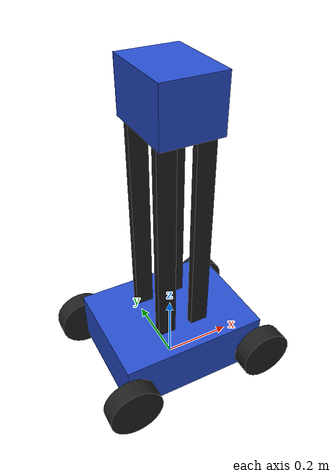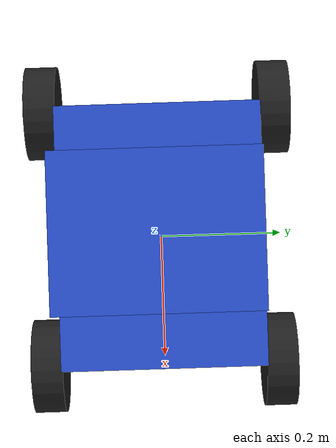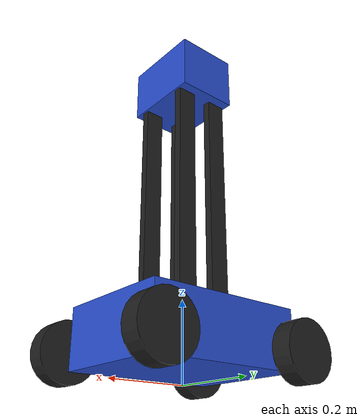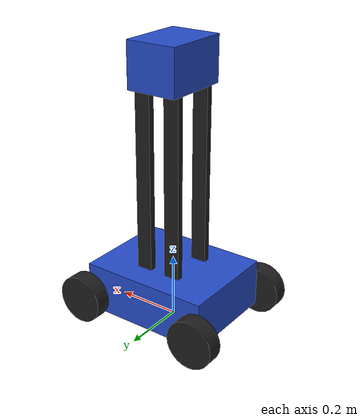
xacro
<?xml version="1.0"?>
<robot xmlns:xacro="http://www.ros.org/wiki/xacro">

    <xacro:property name="base_length" value="0.41" />
    <xacro:property name="base_width" value="0.32" />
    <xacro:property name="base_height" value="0.15" />
    <xacro:property name="pillar_length" value="0.05" />
    <xacro:property name="pillar_width" value="0.02" />
    <xacro:property name="pillar_height" value="0.56" />
    <xacro:property name="wheel_radius" value="0.075" />
    <xacro:property name="wheel_length" value="0.05" />
    <xacro:property name="platform_length" value="0.16" />
    <xacro:property name="platform_width" value="0.21" />
    <xacro:property name="platform_height" value="0.14" />

    <xacro:macro name="wheel_link" params="prefix">
        <link name="${prefix}_wheel_link">
            <visual>
                <geometry>
                    <cylinder radius="${wheel_radius}" length="${wheel_length}"/>
                </geometry>
                <origin xyz="0 0 0" rpy="${pi / 2.0} 0 0" />
                <material name="black"/>
            </visual>
            <collision>
                <geometry>
                    <cylinder radius="${wheel_radius}" length="${wheel_length}"/>
                </geometry>
                <origin xyz="0 0 0" rpy="${pi / 2.0} 0 0" />
            </collision>
            <xacro:cylinder_inertia m="5.0" r="${5*wheel_radius}" h="${5*wheel_length}"
                                    xyz="0 0 0" rpy="${pi / 2.0} 0 0" />
        </link>
    </xacro:macro>

    <xacro:macro name="pillar_link" params="prefix">
        <link name="${prefix}_pillar_link">
            <visual>
                <geometry>
                    <box size="${pillar_length} ${pillar_width} ${pillar_height}"/>
                </geometry>
                <origin xyz="0 0 ${pillar_height / 2.0}" rpy="0 0 0" />
                <material name="black"/>
            </visual>
                <collision>
                    <geometry>
                        <box size="${pillar_length} ${pillar_width} ${pillar_height}"/>
                    </geometry>
                    <origin xyz="0 0 ${pillar_height / 2.0}" rpy="0 0 0" />
                </collision>
            <xacro:box_inertia m="5.0" l="${2*pillar_length}" w="${2*pillar_width}" h="${2*pillar_height}"
                            xyz="0 0 ${pillar_height / 2.0}" rpy="0 0 0"/>
        </link>
    </xacro:macro>

    <link name="base_footprint"/>

    <link name="base_link">
        <visual>
            <geometry>
                <box size="${base_length} ${base_width} ${base_height}"/>
            </geometry>
            <origin xyz="0 0 ${base_height / 2.0}" rpy="0 0 0" />
            <material name="blue"/>
        </visual>
            <collision>
                <geometry>
                    <box size="${base_length} ${base_width} ${base_height}"/>
                </geometry>
                <origin xyz="0 0 ${base_height / 2.0}" rpy="0 0 0" />
            </collision>
        <xacro:box_inertia m="15.0" l="${5*base_length}" w="${5*base_width}" h="${5*base_height}"
                           xyz="0 0 ${base_height / 2.0}" rpy="0 0 0"/>
    </link>

    <link name="upper_platform_link">
        <visual>
            <geometry>
                <box size="${platform_length} ${platform_width} ${platform_height}"/>
            </geometry>
            <origin xyz="0 0 0" rpy="0 0 0" />
            <material name="blue"/>
        </visual>
            <collision>
                <geometry>
                    <box size="${platform_length} ${platform_width} ${platform_height}"/>
                </geometry>
                <origin xyz="0 0 0" rpy="0 0 0" />
            </collision>
        <xacro:box_inertia m="5.0" l="${2*platform_length}" w="${2*platform_width}" h="${2*platform_height}"
                           xyz="0 0 0" rpy="0 0 0"/>
    </link>

    <xacro:wheel_link prefix="rr"/>
    <xacro:wheel_link prefix="rl"/>
    <xacro:wheel_link prefix="fr"/>
    <xacro:wheel_link prefix="fl"/>
    <xacro:pillar_link prefix="right_front"/>
    <xacro:pillar_link prefix="left_front"/>
    <xacro:pillar_link prefix="right_rear"/>
    <xacro:pillar_link prefix="left_rear"/>

    <joint name="base_joint" type="fixed">
        <parent link="base_footprint"/>
        <child link="base_link"/>
        <origin xyz="0 0 0.03" rpy="0 0 0"/>
    </joint>

    <joint name="upper_platform_joint" type="fixed">
        <parent link="base_link"/>
        <child link="upper_platform_link"/>
        <origin xyz="0 0 ${pillar_height + base_height +0.14 / 2.0}" rpy="0 0 0"/>
    </joint>

    <joint name="rr_wheel_joint" type="continuous">
        <parent link="base_link"/>
        <child link="rr_wheel_link"/>
        <origin xyz="${-base_length / 2.0} ${-(base_width + wheel_length) / 2.0} 0.045" rpy="0 0 0"/>
        <axis xyz="0 1 0"/>
    </joint>

    <joint name="rl_wheel_joint" type="continuous">
        <parent link="base_link"/>
        <child link="rl_wheel_link"/>
        <origin xyz="${-base_length / 2.0} ${(base_width + wheel_length) / 2.0} 0.045" rpy="0 0 0"/>
        <axis xyz="0 1 0"/>
    </joint>

    <joint name="fr_wheel_joint" type="continuous">
        <parent link="base_link"/>
        <child link="fr_wheel_link"/>
        <origin xyz="${base_length / 2.0} ${-(base_width + wheel_length) / 2.0} 0.045" rpy="0 0 0"/>
        <axis xyz="0 1 0"/>
    </joint>

    <joint name="fl_wheel_joint" type="continuous">
        <parent link="base_link"/>
        <child link="fl_wheel_link"/>
        <origin xyz="${base_length / 2.0} ${(base_width + wheel_length) / 2.0} 0.045" rpy="0 0 0"/>
        <axis xyz="0 1 0"/>
    </joint>

    <joint name="right_front_pillar_joint" type="fixed">
        <parent link="base_link"/>
        <child link="right_front_pillar_link"/>
        <origin xyz="0.05 0.07 ${base_height}" rpy="0 0 0"/>
        <axis xyz="0 1 0"/>
    </joint>

    <joint name="left_front_pillar_joint" type="fixed">
        <parent link="base_link"/>
        <child link="left_front_pillar_link"/>
        <origin xyz="0.05 -0.07 ${base_height}" rpy="0 0 0"/>
        <axis xyz="0 1 0"/>
    </joint>

    <joint name="right_rear_pillar_joint" type="fixed">
        <parent link="base_link"/>
        <child link="right_rear_pillar_link"/>
        <origin xyz="-0.05 0.07 ${base_height}" rpy="0 0 0"/>
        <axis xyz="0 1 0"/>
    </joint>

    <joint name="left_rear_pillar_joint" type="fixed">
        <parent link="base_link"/>
        <child link="left_rear_pillar_link"/>
        <origin xyz="-0.05 -0.07 ${base_height}" rpy="0 0 0"/>
        <axis xyz="0 1 0"/>
    </joint>

</robot>
